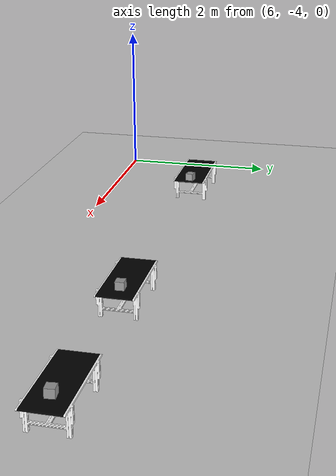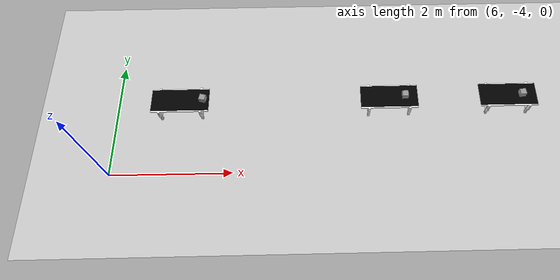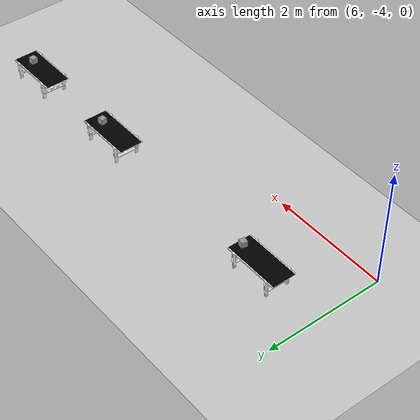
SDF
<sdf version="1.7">
 <world name="conveyor">
  <gravity>0 0 -9.8</gravity>
  <model name="ground_plane">
   <static>1</static>
   <link name="link">
    <collision name="collision">
     <geometry><plane><normal>0 0 1</normal><size>100 100</size></plane></geometry>
     <surface><friction><ode><mu>100</mu><mu2>50</mu2></ode></friction></surface>
    </collision>
    <visual name="visual">
     <cast_shadows>0</cast_shadows>
     <geometry><plane><normal>0 0 1</normal><size>100 100</size></plane></geometry>
     <material>
      <script><uri>file://media/materials/scripts/gazebo.material</uri><name>Gazebo/Grey</name></script>
     </material>
    </visual>
   </link>
  </model>
  <light name="sun" type="directional">
   <pose>0 0 10 0 -0 0</pose>
   <diffuse>0.8 0.8 0.8 1</diffuse>
   <specular>0.2 0.2 0.2 1</specular>
   <attenuation>
    <range>1000</range>
    <constant>0.9</constant>
    <linear>0.01</linear>
    <quadratic>0.001</quadratic>
   </attenuation>
   <direction>-0.5 0.1 -0.9</direction>
   <spot><inner_angle>0</inner_angle><outer_angle>0</outer_angle><falloff>0</falloff></spot>
  </light>
  <scene><shadows>0</shadows><ambient>0.4 0.4 0.4 1</ambient><background>0.7 0.7 0.7 1</background></scene>
  <model name="conveyor_belt">
   <model name="conveyorbelt_fixed_1">
    <static>1</static>
    <link name="belt_visual_1">
     <pose>7.1 -2.8 0 0 -0 1.57</pose>
     <visual name="visual">
      <geometry>
       <mesh><scale>1 0.8 0.4</scale><uri>model://conveyor_belt/meshes/conveyor_belt.dae</uri></mesh>
      </geometry>
     </visual>
     <collision name="collision_1">
      <geometry>
       <mesh><scale>1 0.8 0.4</scale><uri>model://conveyor_belt/meshes/conveyor_belt.dae</uri></mesh>
      </geometry>
      <origin xyz="7.1 -2.8 0" rpy="0.0 0.0 1.57"/>
     </collision>
    </link>
   </model>
   <model name="conveyorbelt_moving_1">
    <allow_auto_disable>0</allow_auto_disable>
    <static>0</static>
    <pose>7.1 -2.8 0.3 0 -0 1.57</pose>
    <link name="belt_moving_1">
     <inertial>
      <mass>100</mass>
      <inertia><ixx>0</ixx><ixy>0</ixy><ixz>0</ixz><iyy>0</iyy><iyz>0</iyz><izz>0</izz></inertia>
      <pose>7.1 -2.8 0.3 0 -0 1.57</pose>
     </inertial>
     <collision name="belt_collision_1">
      <geometry><box><size>0.425 0.95 1e-05</size></box></geometry>
      <surface>
       <friction>
        <ode><mu>100</mu><mu2>100</mu2></ode>
        <torsional><coefficient>1000</coefficient><patch_radius>0.1</patch_radius></torsional>
       </friction>
      </surface>
     </collision>
    </link>
   </model>
   <model name="conveyorbelt_fixed_2">
    <static>1</static>
    <link name="belt_visual_2">
     <pose>10.6 -2.8 0 0 -0 1.57</pose>
     <visual name="visual">
      <geometry>
       <mesh><scale>1 0.8 0.4</scale><uri>model://conveyor_belt/meshes/conveyor_belt.dae</uri></mesh>
      </geometry>
     </visual>
     <collision name="collision_2">
      <geometry>
       <mesh><scale>1 0.8 0.4</scale><uri>model://conveyor_belt/meshes/conveyor_belt.dae</uri></mesh>
      </geometry>
      <origin xyz="10.6 -2.8 0" rpy="0.0 0.0 1.57"/>
     </collision>
    </link>
   </model>
   <model name="conveyorbelt_moving_2">
    <allow_auto_disable>0</allow_auto_disable>
    <static>0</static>
    <pose>10.6 -2.8 0.3 0 -0 1.57</pose>
    <link name="belt_moving_2">
     <inertial>
      <mass>100</mass>
      <inertia><ixx>0</ixx><ixy>0</ixy><ixz>0</ixz><iyy>0</iyy><iyz>0</iyz><izz>0</izz></inertia>
     </inertial>
     <collision name="belt_collision_2">
      <geometry><box><size>0.425 0.95 1e-05</size></box></geometry>
      <surface>
       <friction>
        <ode><mu>100</mu><mu2>100</mu2></ode>
        <torsional><coefficient>1000</coefficient><patch_radius>0.1</patch_radius></torsional>
       </friction>
      </surface>
     </collision>
    </link>
   </model>
   <model name="conveyorbelt_fixed_3">
    <static>1</static>
    <link name="belt_visual_3">
     <pose>12.6 -2.8 0 0 -0 1.57</pose>
     <visual name="visual">
      <geometry>
       <mesh><scale>1 0.8 0.4</scale><uri>model://conveyor_belt/meshes/conveyor_belt.dae</uri></mesh>
      </geometry>
     </visual>
     <collision name="collision_3">
      <geometry>
       <mesh><scale>1 0.8 0.4</scale><uri>model://conveyor_belt/meshes/conveyor_belt.dae</uri></mesh>
      </geometry>
      <origin xyz="12.6 -2.8 0" rpy="0.0 0.0 1.57"/>
     </collision>
    </link>
   </model>
   <model name="conveyorbelt_moving_3">
    <allow_auto_disable>0</allow_auto_disable>
    <static>0</static>
    <pose>12.6 -2.8 0.3 0 -0 1.57</pose>
    <link name="belt_moving_3">
     <inertial>
      <mass>100</mass>
      <inertia><ixx>0</ixx><ixy>0</ixy><ixz>0</ixz><iyy>0</iyy><iyz>0</iyz><izz>0</izz></inertia>
     </inertial>
     <collision name="belt_collision_3">
      <geometry><box><size>0.425 0.95 1e-05</size></box></geometry>
      <surface>
       <friction>
        <ode><mu>100</mu><mu2>100</mu2></ode>
        <torsional><coefficient>1000</coefficient><patch_radius>0.1</patch_radius></torsional>
       </friction>
      </surface>
     </collision>
    </link>
   </model>
   <joint name="belt_joint_1" type="prismatic">
    <parent>conveyorbelt_fixed_1::belt_visual_1</parent>
    <child>conveyorbelt_moving_1::belt_moving_1</child>
    <axis>
     <xyz expressed_in="__model__">-1 0 0</xyz>
     <limit><lower>0</lower><upper>0.01</upper></limit>
     <dynamics><spring_reference>0</spring_reference><spring_stiffness>0</spring_stiffness></dynamics>
    </axis>
   </joint>
   <joint name="belt_joint_2" type="prismatic">
    <parent>conveyorbelt_fixed_2::belt_visual_2</parent>
    <child>conveyorbelt_moving_2::belt_moving_2</child>
    <axis>
     <xyz expressed_in="__model__">-1 0 0</xyz>
     <limit><lower>0</lower><upper>0.01</upper></limit>
     <dynamics><spring_reference>0</spring_reference><spring_stiffness>0</spring_stiffness></dynamics>
    </axis>
   </joint>
   <joint name="belt_joint_3" type="prismatic">
    <parent>conveyorbelt_fixed_3::belt_visual_3</parent>
    <child>conveyorbelt_moving_3::belt_moving_3</child>
    <axis>
     <xyz expressed_in="__model__">-1 0 0</xyz>
     <limit><lower>0</lower><upper>0.01</upper></limit>
     <dynamics><spring_reference>0</spring_reference><spring_stiffness>0</spring_stiffness></dynamics>
    </axis>
   </joint>
   <plugin name="ros2_conveyorbelt_plugin" filename="libros2_conveyorbelt_plugin.so">
    <belt_changer_velocity>0.3</belt_changer_velocity>
    <max_velocity_1>1.0</max_velocity_1>
    <max_velocity_2>1.0</max_velocity_2>
    <max_velocity_3>1.0</max_velocity_3>
    <publish_rate>1000</publish_rate>
   </plugin>
  </model>
  <magnetic_field>6e-06 2.3e-05 -4.2e-05</magnetic_field>
  <atmosphere type="adiabatic"/>
  <physics type="ode">
   <max_step_size>0.001</max_step_size>
   <real_time_factor>1</real_time_factor>
   <real_time_update_rate>1000</real_time_update_rate>
  </physics>
  <audio><device>default</device></audio>
  <spherical_coordinates>
   <surface_model>EARTH_WGS84</surface_model>
   <latitude_deg>0</latitude_deg>
   <longitude_deg>0</longitude_deg>
   <elevation>0</elevation>
   <heading_deg>0</heading_deg>
  </spherical_coordinates>
  <model name="unit_box">
   <link name="link">
    <inertial>
     <mass>1</mass>
     <inertia>
      <ixx>0.000166667</ixx>
      <ixy>0</ixy>
      <ixz>0</ixz>
      <iyy>0.000166667</iyy>
      <iyz>0</iyz>
      <izz>0.000166667</izz>
     </inertia>
    </inertial>
    <visual name="visual">
     <geometry><box><size>0.1 0.1 0.1</size></box></geometry>
     <material>
      <script><name>Gazebo/Grey</name><uri>file://media/materials/scripts/gazebo.material</uri></script>
      <shader type="pixel"><normal_map>__default__</normal_map></shader>
      <ambient>0.3 0.3 0.3 1</ambient>
      <diffuse>0.7 0.7 0.7 1</diffuse>
      <specular>0.01 0.01 0.01 1</specular>
      <emissive>0 0 0 1</emissive>
     </material>
    </visual>
    <collision name="collision">
     <max_contacts>0</max_contacts>
     <geometry><box><size>0.1 0.1 0.08</size></box></geometry>
     <surface>
      <friction>
       <ode><mu>1</mu><mu2>1</mu2><fdir1>0 0 0</fdir1><slip1>0</slip1><slip2>0</slip2></ode>
       <torsional>
        <coefficient>1</coefficient>
        <patch_radius>0</patch_radius>
        <surface_radius>0</surface_radius>
        <use_patch_radius>1</use_patch_radius>
        <ode><slip>0</slip></ode>
       </torsional>
      </friction>
      <bounce><restitution_coefficient>0</restitution_coefficient><threshold>1e+06</threshold></bounce>
      <contact>
       <collide_without_contact>0</collide_without_contact>
       <collide_without_contact_bitmask>1</collide_without_contact_bitmask>
       <collide_bitmask>1</collide_bitmask>
       <ode>
        <soft_cfm>0</soft_cfm>
        <soft_erp>0.2</soft_erp>
        <kp>1e+13</kp>
        <kd>1</kd>
        <max_vel>0.01</max_vel>
        <min_depth>0</min_depth>
       </ode>
       <bullet>
        <split_impulse>1</split_impulse>
        <split_impulse_penetration_threshold>-0.01</split_impulse_penetration_threshold>
        <soft_cfm>0</soft_cfm>
        <soft_erp>0.2</soft_erp>
        <kp>1e+13</kp>
        <kd>1</kd>
       </bullet>
      </contact>
     </surface>
    </collision>
   </link>
   <static>0</static>
   <pose>7.48202 -2.79231 0.33999 3.14156 5.8e-05 -0.220071</pose>
  </model>
  <model name="unit_box_clone">
   <link name="link">
    <inertial>
     <mass>1</mass>
     <inertia>
      <ixx>0.000166667</ixx>
      <ixy>0</ixy>
      <ixz>0</ixz>
      <iyy>0.000166667</iyy>
      <iyz>0</iyz>
      <izz>0.000166667</izz>
     </inertia>
    </inertial>
    <visual name="visual">
     <geometry><box><size>0.1 0.1 0.1</size></box></geometry>
     <material>
      <script><name>Gazebo/Grey</name><uri>file://media/materials/scripts/gazebo.material</uri></script>
      <shader type="pixel"><normal_map>__default__</normal_map></shader>
      <ambient>0.3 0.3 0.3 1</ambient>
      <diffuse>0.7 0.7 0.7 1</diffuse>
      <specular>0.01 0.01 0.01 1</specular>
      <emissive>0 0 0 1</emissive>
     </material>
    </visual>
    <collision name="collision">
     <max_contacts>0</max_contacts>
     <geometry><box><size>0.1 0.1 0.08</size></box></geometry>
     <surface>
      <friction>
       <ode><mu>1</mu><mu2>1</mu2><fdir1>0 0 0</fdir1><slip1>0</slip1><slip2>0</slip2></ode>
       <torsional>
        <coefficient>1</coefficient>
        <patch_radius>0</patch_radius>
        <surface_radius>0</surface_radius>
        <use_patch_radius>1</use_patch_radius>
        <ode><slip>0</slip></ode>
       </torsional>
      </friction>
      <bounce><restitution_coefficient>0</restitution_coefficient><threshold>1e+06</threshold></bounce>
      <contact>
       <collide_without_contact>0</collide_without_contact>
       <collide_without_contact_bitmask>1</collide_without_contact_bitmask>
       <collide_bitmask>1</collide_bitmask>
       <ode>
        <soft_cfm>0</soft_cfm>
        <soft_erp>0.2</soft_erp>
        <kp>1e+13</kp>
        <kd>1</kd>
        <max_vel>0.01</max_vel>
        <min_depth>0</min_depth>
       </ode>
       <bullet>
        <split_impulse>1</split_impulse>
        <split_impulse_penetration_threshold>-0.01</split_impulse_penetration_threshold>
        <soft_cfm>0</soft_cfm>
        <soft_erp>0.2</soft_erp>
        <kp>1e+13</kp>
        <kd>1</kd>
       </bullet>
      </contact>
     </surface>
    </collision>
   </link>
   <static>0</static>
   <pose>10.8638 -2.7929 0.340005 1e-05 -3e-05 0.035774</pose>
  </model>
  <model name="unit_box_clone_clone">
   <link name="link">
    <inertial>
     <mass>1</mass>
     <inertia>
      <ixx>0.000166667</ixx>
      <ixy>0</ixy>
      <ixz>0</ixz>
      <iyy>0.000166667</iyy>
      <iyz>0</iyz>
      <izz>0.000166667</izz>
     </inertia>
    </inertial>
    <visual name="visual">
     <geometry><box><size>0.1 0.1 0.1</size></box></geometry>
     <material>
      <script><name>Gazebo/Grey</name><uri>file://media/materials/scripts/gazebo.material</uri></script>
      <shader type="pixel"><normal_map>__default__</normal_map></shader>
      <ambient>0.3 0.3 0.3 1</ambient>
      <diffuse>0.7 0.7 0.7 1</diffuse>
      <specular>0.01 0.01 0.01 1</specular>
      <emissive>0 0 0 1</emissive>
     </material>
    </visual>
    <collision name="collision">
     <max_contacts>0</max_contacts>
     <geometry><box><size>0.1 0.1 0.08</size></box></geometry>
     <surface>
      <friction>
       <ode><mu>1</mu><mu2>1</mu2><fdir1>0 0 0</fdir1><slip1>0</slip1><slip2>0</slip2></ode>
       <torsional>
        <coefficient>1</coefficient>
        <patch_radius>0</patch_radius>
        <surface_radius>0</surface_radius>
        <use_patch_radius>1</use_patch_radius>
        <ode><slip>0</slip></ode>
       </torsional>
      </friction>
      <bounce><restitution_coefficient>0</restitution_coefficient><threshold>1e+06</threshold></bounce>
      <contact>
       <collide_without_contact>0</collide_without_contact>
       <collide_without_contact_bitmask>1</collide_without_contact_bitmask>
       <collide_bitmask>1</collide_bitmask>
       <ode>
        <soft_cfm>0</soft_cfm>
        <soft_erp>0.2</soft_erp>
        <kp>1e+13</kp>
        <kd>1</kd>
        <max_vel>0.01</max_vel>
        <min_depth>0</min_depth>
       </ode>
       <bullet>
        <split_impulse>1</split_impulse>
        <split_impulse_penetration_threshold>-0.01</split_impulse_penetration_threshold>
        <soft_cfm>0</soft_cfm>
        <soft_erp>0.2</soft_erp>
        <kp>1e+13</kp>
        <kd>1</kd>
       </bullet>
      </contact>
     </surface>
    </collision>
   </link>
   <static>0</static>
   <pose>12.8319 -2.79898 0.340001 3.14159 8.8e-05 0.085648</pose>
  </model>
 </world>
</sdf>
